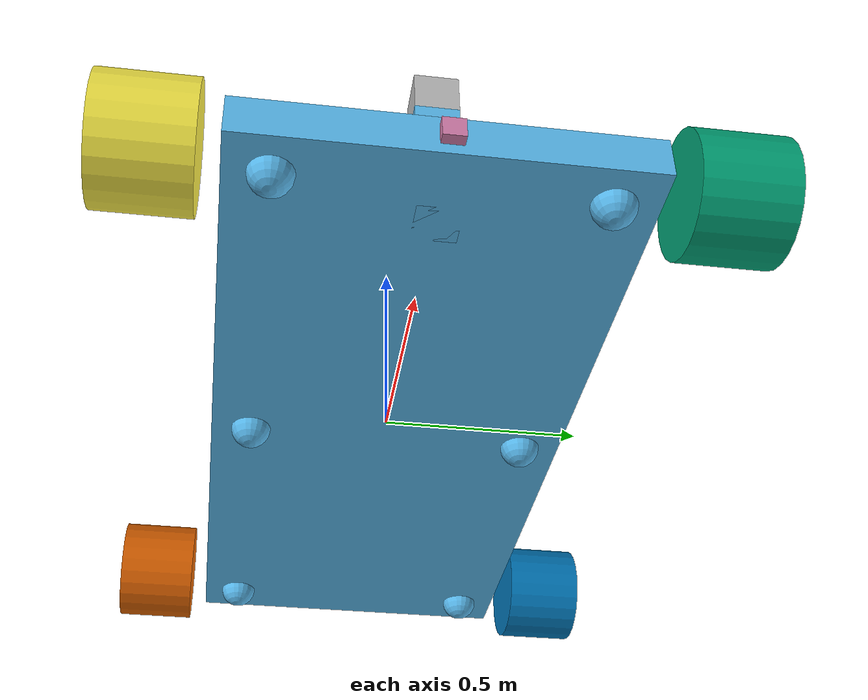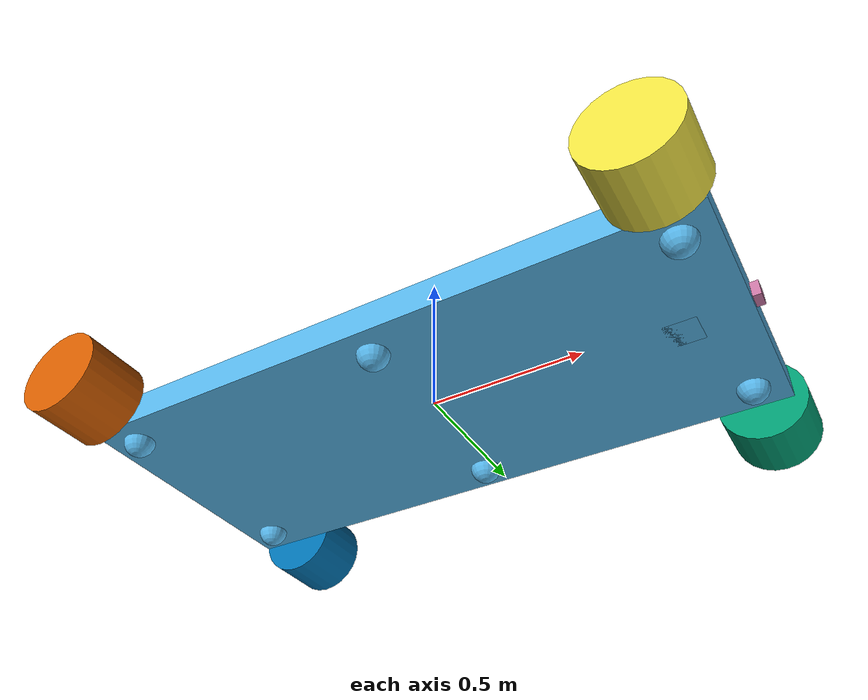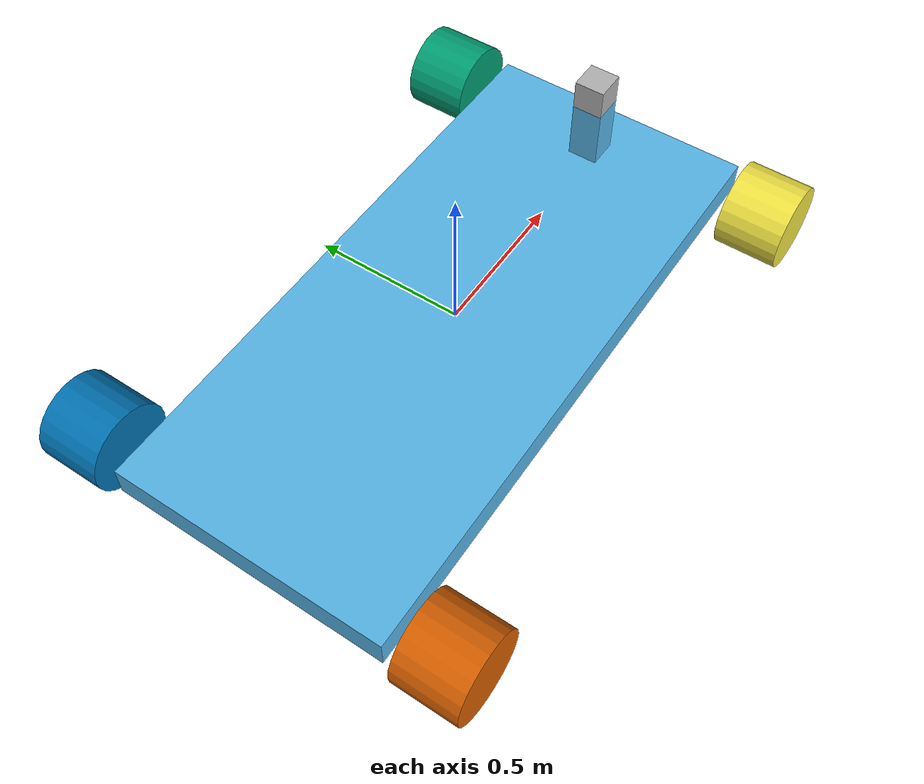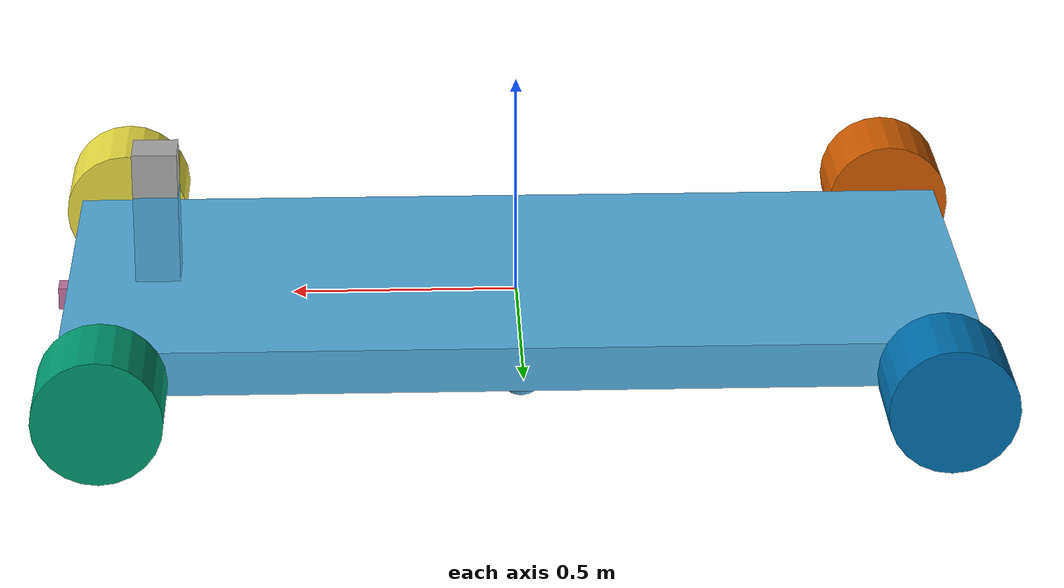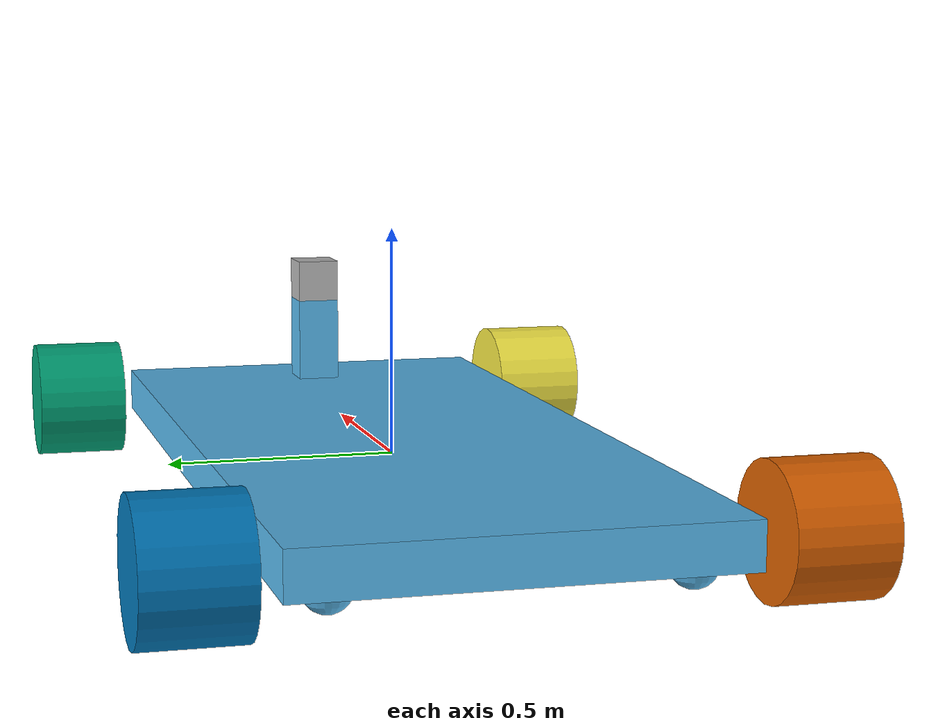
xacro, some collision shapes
<?xml version='1.0'?>

<robot name="my_gokart" xmlns:xacro="http://www.ros.org/wiki/xacro">

  <link name="robot_footprint"></link>
  <xacro:include filename="$(find my_gokart)/urdf/my_gokart.gazebo" />

  <joint name="robot_footprint_joint" type="fixed">
    <origin xyz="0 0 0" rpy="0 0 0" />
    <parent link="robot_footprint"/>
    <child link="chassis" />
  </joint>

  <link name='chassis'>
    <pose>0 0 0.1 0 0 0</pose>

    <inertial>
      <mass value="10.0"/>
      <origin xyz="0.0 0 0" rpy=" 0 0 0"/>
      <inertia
          ixx="0.1" ixy="0" ixz="0"
          iyy="0.1" iyz="0"
          izz="0.1"
      />
    </inertial>

    <collision name='chassis_collision'>
      <origin xyz="0 0 0" rpy=" 0 0 0"/>
      <geometry>
        <box size="2. .9 .1"/>
      </geometry>
    </collision>

    <visual name='chassis_visual'>
      <origin xyz="0 0 0" rpy=" 0 0 0"/>
      <geometry>
        <box size="2. .9 .1"/>
      </geometry>
    </visual>

    <collision name='sensor_platform_collision'>
      <origin xyz="0.8 0 0.1" rpy=" 0 0 0"/>
      <geometry>
        <box size=".1 .1 .3"/>
      </geometry>
    </collision>

    <visual name='sensor_platform_visual'>
      <origin xyz="0.8 0 0.1" rpy=" 0 0 0"/>
      <geometry>
        <box size=".1 .1 .3"/>
      </geometry>
    </visual>

    <collision name='front_left_caster_collision'>
      <origin xyz="0.9 .35 -0.05" rpy=" 0 0 0"/>
      <geometry>
        <sphere radius="0.0499"/>
      </geometry>
    </collision>

    <visual name='front_left_caster_visual'>
      <origin xyz="0.9 .35 -0.05" rpy=" 0 0 0"/>
      <geometry>
        <sphere radius="0.05"/>
      </geometry>
    </visual>

    <collision name='front_right_caster_collision'>
      <origin xyz="0.9 -0.35 -0.05" rpy=" 0 0 0"/>
      <geometry>
        <sphere radius="0.0499"/>
      </geometry>
    </collision>

    <visual name='front_right_caster_visual'>
      <origin xyz="0.9 -0.35 -0.05" rpy=" 0 0 0"/>
      <geometry>
        <sphere radius="0.05"/>
      </geometry>
    </visual>

    <collision name='center_left_caster_collision'>
      <origin xyz="0 0.35 -0.05" rpy=" 0 0 0"/>
      <geometry>
        <sphere radius="0.0499"/>
      </geometry>
    </collision>

    <visual name='center_left_caster_visual'>
      <origin xyz="0 0.35 -0.05" rpy=" 0 0 0"/>
      <geometry>
        <sphere radius="0.05"/>
      </geometry>
    </visual>

    <collision name='center_right_caster_collision'>
      <origin xyz="0 -0.35 -0.05" rpy=" 0 0 0"/>
      <geometry>
        <sphere radius="0.0499"/>
      </geometry>
    </collision>

    <visual name='center_right_caster_visual'>
      <origin xyz="0 -0.35 -0.05" rpy=" 0 0 0"/>
      <geometry>
        <sphere radius="0.05"/>
      </geometry>
    </visual>

    <collision name='rear_left_caster_collision'>
      <origin xyz="-0.9 0.35 -0.05" rpy=" 0 0 0"/>
      <geometry>
        <sphere radius="0.0499"/>
      </geometry>
    </collision>

    <visual name='rear_left_caster_visual'>
      <origin xyz="-0.9 0.35 -0.05" rpy=" 0 0 0"/>
      <geometry>
        <sphere radius="0.05"/>
      </geometry>
    </visual>

    <collision name='rear_right_caster_collision'>
      <origin xyz="-0.9 -0.35 -0.05" rpy=" 0 0 0"/>
      <geometry>
        <sphere radius="0.0499"/>
      </geometry>
    </collision>

    <visual name='rear_right_caster_visual'>
      <origin xyz="-0.9 -0.35 -0.05" rpy=" 0 0 0"/>
      <geometry>
        <sphere radius="0.05"/>
      </geometry>
    </visual>

  </link>

  <link name='front_left_wheel'>
    <pose>0 0 0 0 0 0</pose>

    <inertial>
      <mass value="5.0"/>
      <origin xyz="0.0 0 0" rpy=" 0 1.5707 1.5707"/>
      <inertia
          ixx="0.1" ixy="0" ixz="0"
          iyy="0.1" iyz="0"
          izz="0.1"
      />
    </inertial>

    <collision name='front_left_wheel_collision'>
      <origin xyz="0 0 0" rpy=" 0 1.5707 1.5707"/>
      <geometry>
        <cylinder radius="0.14" length="0.21"/>
      </geometry>
    </collision>

    <visual name='front_left_wheel_visual'>
      <origin xyz="0 0 0" rpy=" 0 1.5707 1.5707"/>
      <geometry>
        <cylinder radius="0.14" length="0.21"/>
      </geometry>
    </visual>
  </link>

  <link name='front_right_wheel'>
    <pose>0 0 0 0 0 0</pose>

    <inertial>
      <mass value="5.0"/>
      <origin xyz="0.0 0 0" rpy=" 0 1.5707 1.5707"/>
      <inertia
          ixx="0.1" ixy="0" ixz="0"
          iyy="0.1" iyz="0"
          izz="0.1"
      />
    </inertial>

    <collision name='front_right_wheel_collision'>
      <origin xyz="0 0 0" rpy=" 0 1.5707 1.5707"/>
      <geometry>
        <cylinder radius="0.14" length="0.21"/>
      </geometry>
    </collision>

    <visual name='front_right_wheel_visual'>
      <origin xyz="0 0 0" rpy=" 0 1.5707 1.5707"/>
      <geometry>
        <cylinder radius="0.14" length="0.21"/>
      </geometry>
    </visual>
  </link>

  <link name='rear_left_wheel'>
    <pose>0 0 0 0 0 0</pose>

    <inertial>
      <mass value="5.0"/>
      <origin xyz="0.0 0 0" rpy=" 0 1.5707 1.5707"/>
      <inertia
          ixx="0.1" ixy="0" ixz="0"
          iyy="0.1" iyz="0"
          izz="0.1"
      />
    </inertial>

    <collision name='rear_left_wheel_collision'>
      <origin xyz="0 0 0" rpy=" 0 1.5707 1.5707"/>
      <geometry>
        <cylinder radius="0.14" length="0.21"/>
      </geometry>
    </collision>

    <visual name='rear_left_wheel_visual'>
      <origin xyz="0 0 0" rpy=" 0 1.5707 1.5707"/>
      <geometry>
        <cylinder radius="0.14" length="0.21"/>
      </geometry>
    </visual>
  </link>

  <link name='rear_right_wheel'>
    <pose>0 0 0 0 0 0</pose>

    <inertial>
      <mass value="5.0"/>
      <origin xyz="0.0 0 0" rpy=" 0 1.5707 1.5707"/>
      <inertia
          ixx="0.1" ixy="0" ixz="0"
          iyy="0.1" iyz="0"
          izz="0.1"
      />
    </inertial>

    <collision name='rear_right_wheel_collision'>
      <origin xyz="0 0 0" rpy=" 0 1.5707 1.5707"/>
      <geometry>
        <cylinder radius="0.14" length="0.21"/>
      </geometry>
    </collision>

    <visual name='rear_right_wheel_visual'>
      <origin xyz="0 0 0" rpy=" 0 1.5707 1.5707"/>
      <geometry>
        <cylinder radius="0.14" length="0.21"/>
      </geometry>
    </visual>
  </link>

  <joint type="continuous" name="front_left_wheel_hinge">
    <origin xyz="0.9 0.6 0" rpy="0 0 0"/>
    <child link="front_left_wheel"/>
    <parent link="chassis"/>
    <axis xyz="0 1 0" rpy="0 0 0"/>
    <limit effort="10000" velocity="1000"/>
    <dynamics damping="1.0" friction="1.0"/>
  </joint>

  <joint type="continuous" name="front_right_wheel_hinge">
    <origin xyz="0.9 -0.6 0" rpy="0 0 0"/>
    <child link="front_right_wheel"/>
    <parent link="chassis"/>
    <axis xyz="0 1 0" rpy="0 0 0"/>
    <limit effort="10000" velocity="1000"/>
    <dynamics damping="1.0" friction="1.0"/>
  </joint>

  <joint type="continuous" name="rear_left_wheel_hinge">
    <origin xyz="-0.9 0.6 0" rpy="0 0 0"/>
    <child link="rear_left_wheel"/>
    <parent link="chassis"/>
    <axis xyz="0 1 0" rpy="0 0 0"/>
    <limit effort="10000" velocity="1000"/>
    <dynamics damping="1.0" friction="1.0"/>
  </joint>

  <joint type="continuous" name="rear_right_wheel_hinge">
    <origin xyz="-0.9 -0.6 0" rpy="0 0 0"/>
    <child link="rear_right_wheel"/>
    <parent link="chassis"/>
    <axis xyz="0 1 0" rpy="0 0 0"/>
    <limit effort="10000" velocity="1000"/>
    <dynamics damping="1.0" friction="1.0"/>
  </joint>

  <link name='camera'>
    <pose>0 0 0 0 0 0</pose>

    <inertial>
      <mass value="0.1"/>
      <origin xyz="0.0 0 0" rpy="0.0 0 0"/>
      <inertia
          ixx="1e-6" ixy="0" ixz="0"
          iyy="1e-6" iyz="0"
          izz="1e-6"
      />
    </inertial>

    <collision name='collision'>
      <origin xyz="0 0 0" rpy=" 0 0 0"/>
      <geometry>
        <box size="0.05 0.05 0.05"/>
      </geometry>
    </collision>

    <visual name='camera_visual'>
      <origin xyz="0 0 0" rpy="0 0 0"/>
      <geometry>
        <box size="0.05 0.05 0.05"/>
      </geometry>
    </visual>
  </link>

  <joint type="fixed" name="camera_joint">
    <origin xyz="1.0 0 0" rpy="0 0 0"/>
    <child link="camera"/>
    <parent link="chassis"/>
    <axis xyz="0 1 0" rpy="0 0 0"/>
    <limit effort="10000" velocity="1000"/>
    <dynamics damping="1.0" friction="1.0"/>
  </joint>

  <link name='hokuyo'>
    <pose>0 0 0 0 0 0</pose>

    <inertial>
      <mass value="1e-5"/>
      <origin xyz="0.0 0 0" rpy="0.0 0 0"/>
      <inertia
          ixx="1e-6" ixy="0" ixz="0"
          iyy="1e-6" iyz="0"
          izz="1e-6"
      />
    </inertial>

    <collision name='collision'>
      <origin xyz="0 0 0" rpy=" 0 0 0"/>
      <geometry>
        <box size="0.1 0.1 0.1"/>
      </geometry>
    </collision>

    <visual name='hokuyo_visual'>
      <origin xyz="0 0 0" rpy="0 0 0"/>
      <geometry>
        <mesh filename="package://my_robot/meshes/hokuyo.dae"/>
      </geometry>
    </visual>
  </link>

  <joint type="fixed" name="hokuyo_joint">
    <origin xyz="0.8 0.0 0.3" rpy="0 0 0"/>
    <child link="hokuyo"/>
    <parent link="chassis"/>
    <axis xyz="0 1 0" rpy="0 0 0"/>
    <limit effort="10000" velocity="1000"/>
    <dynamics damping="1.0" friction="1.0"/>
  </joint>

</robot>
